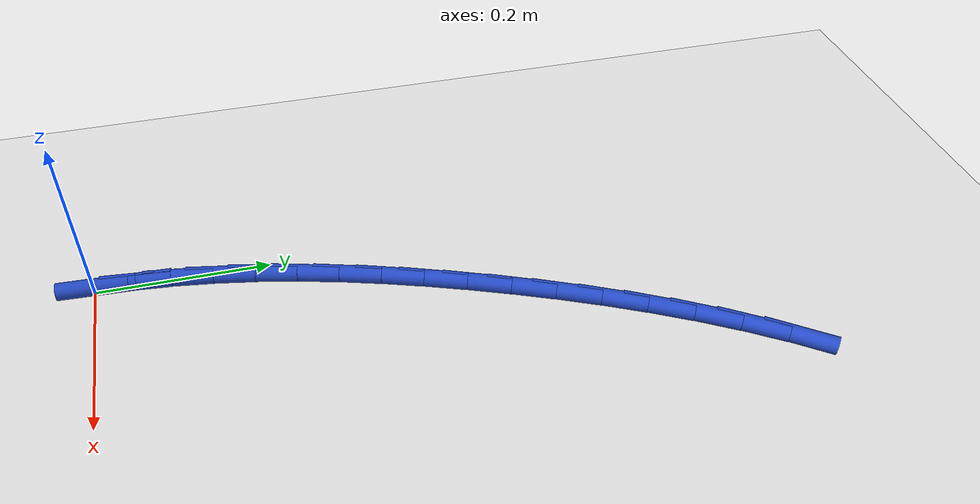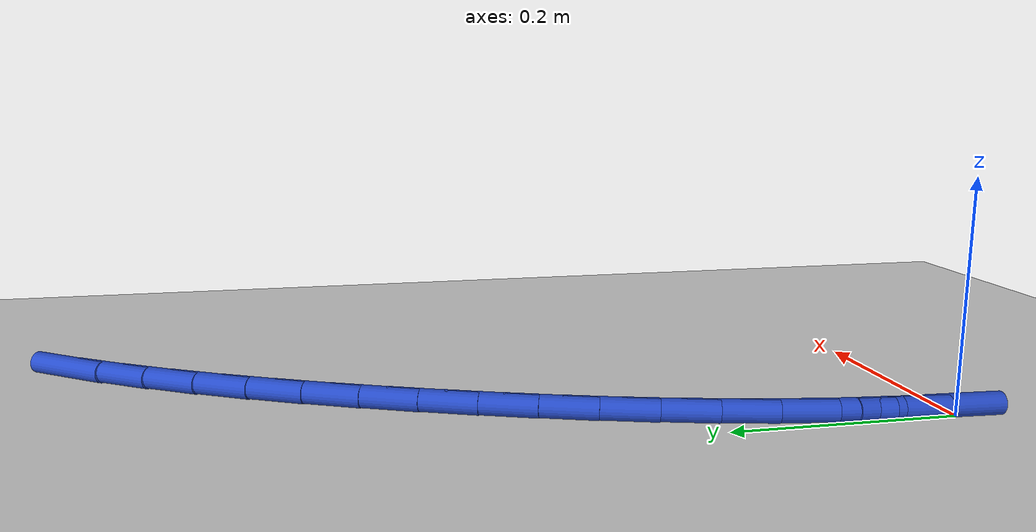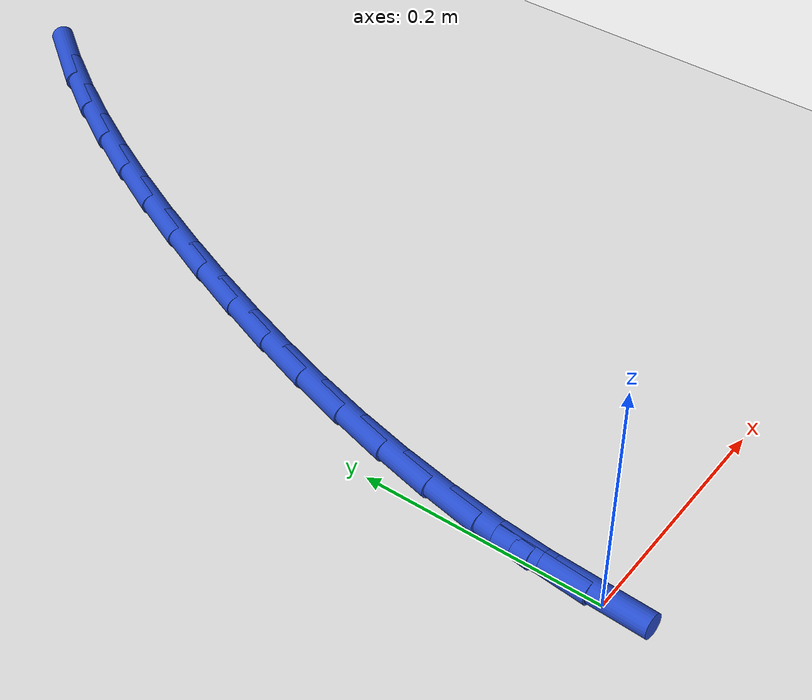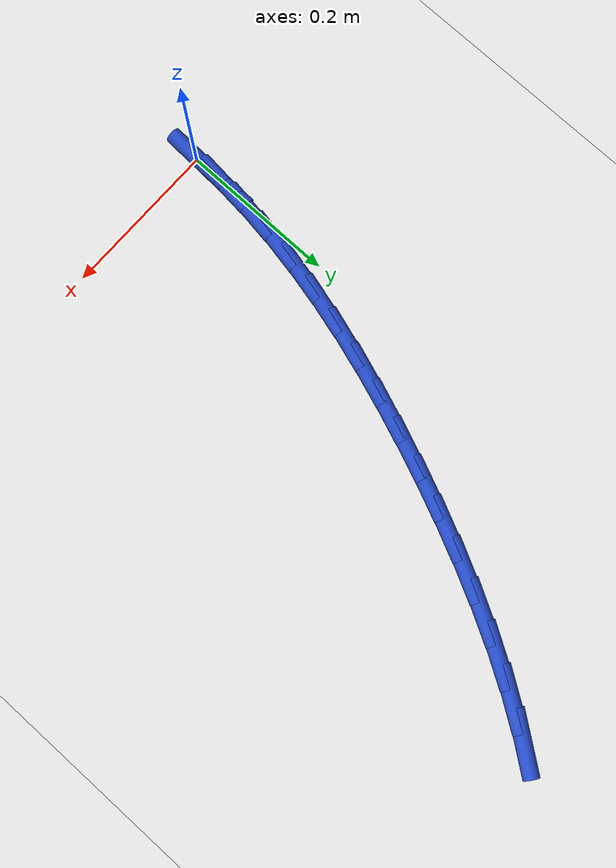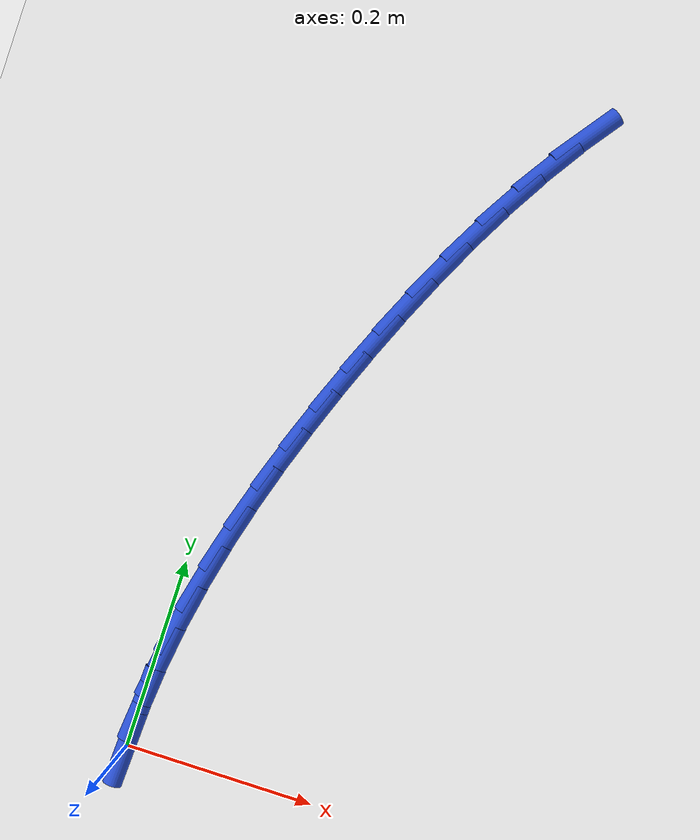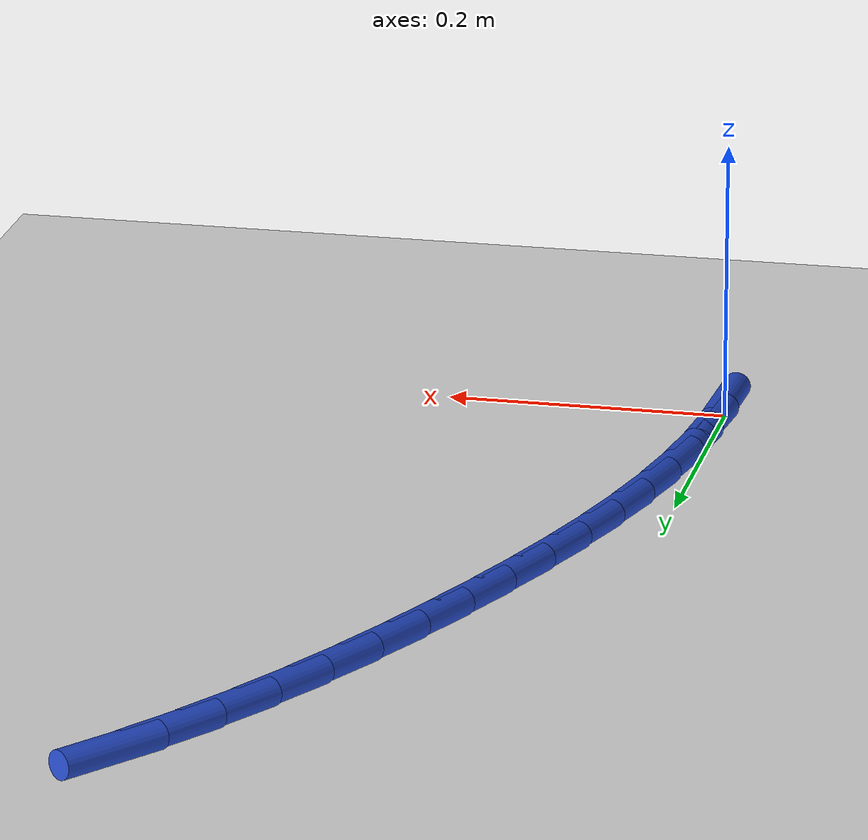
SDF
<sdf version="1.6">
 <world name="default">
  <model name="ground_plane">
   <static>1</static>
   <link name="link">
    <collision name="collision">
     <geometry><plane><normal>0 0 1</normal><size>100 100</size></plane></geometry>
     <surface><friction><ode><mu>100</mu><mu2>50</mu2></ode></friction></surface>
    </collision>
    <visual name="visual">
     <cast_shadows>0</cast_shadows>
     <geometry><plane><normal>0 0 1</normal><size>100 100</size></plane></geometry>
     <material>
      <script><uri>file://media/materials/scripts/gazebo.material</uri><name>Gazebo/WhiteGlow</name></script>
     </material>
    </visual>
   </link>
  </model>
  <model name="line">
   <link name="link_1">
    <pose>0.002061508336502274 0.047938373631018355 0.01 0 1.57 1.4752928590104364</pose>
    <collision name="collision">
     <geometry><cylinder><radius>0.01</radius><length>0.08</length></cylinder></geometry>
    </collision>
    <visual name="visual">
     <material>
      <script><name>Gazebo/Blue</name><uri>file://media/materials/scripts/gazebo.material</uri></script>
     </material>
     <geometry><cylinder><radius>0.01</radius><length>0.08</length></cylinder></geometry>
    </visual>
   </link>
   <link name="link_2">
    <pose>0.00662725512407017 0.09560006787530616 0.01 0 1.57 1.4260237001838905</pose>
    <collision name="collision">
     <geometry><cylinder><radius>0.01</radius><length>0.08</length></cylinder></geometry>
    </collision>
    <visual name="visual">
     <material>
      <script><name>Gazebo/Blue</name><uri>file://media/materials/scripts/gazebo.material</uri></script>
     </material>
     <geometry><cylinder><radius>0.01</radius><length>0.08</length></cylinder></geometry>
    </visual>
   </link>
   <link name="link_3">
    <pose>0.01354250712199076 0.1430321826391709 0.01 0 1.57 1.3803273264530966</pose>
    <collision name="collision">
     <geometry><cylinder><radius>0.01</radius><length>0.08</length></cylinder></geometry>
    </collision>
    <visual name="visual">
     <material>
      <script><name>Gazebo/Blue</name><uri>file://media/materials/scripts/gazebo.material</uri></script>
     </material>
     <geometry><cylinder><radius>0.01</radius><length>0.08</length></cylinder></geometry>
    </visual>
   </link>
   <link name="link_4">
    <pose>0.022652531089551117 0.19028181782891987 0.01 0 1.57 1.3384117648278857</pose>
    <collision name="collision">
     <geometry><cylinder><radius>0.01</radius><length>0.08</length></cylinder></geometry>
    </collision>
    <visual name="visual">
     <material>
      <script><name>Gazebo/Blue</name><uri>file://media/materials/scripts/gazebo.material</uri></script>
     </material>
     <geometry><cylinder><radius>0.01</radius><length>0.08</length></cylinder></geometry>
    </visual>
   </link>
   <link name="link_5">
    <pose>0.033802593786038344 0.23739607335086071 0.01 0 1.57 1.300390533284064</pose>
    <collision name="collision">
     <geometry><cylinder><radius>0.01</radius><length>0.08</length></cylinder></geometry>
    </collision>
    <visual name="visual">
     <material>
      <script><name>Gazebo/Blue</name><uri>file://media/materials/scripts/gazebo.material</uri></script>
     </material>
     <geometry><cylinder><radius>0.01</radius><length>0.08</length></cylinder></geometry>
    </visual>
   </link>
   <link name="link_6">
    <pose>0.04683796197073954 0.28442204911130087 0.01 0 1.57 1.2662991908527867</pose>
    <collision name="collision">
     <geometry><cylinder><radius>0.01</radius><length>0.08</length></cylinder></geometry>
    </collision>
    <visual name="visual">
     <material>
      <script><name>Gazebo/Blue</name><uri>file://media/materials/scripts/gazebo.material</uri></script>
     </material>
     <geometry><cylinder><radius>0.01</radius><length>0.08</length></cylinder></geometry>
    </visual>
   </link>
   <link name="link_7">
    <pose>0.06160390240294175 0.33140684501654777 0.01 0 1.57 1.2361129764337027</pose>
    <collision name="collision">
     <geometry><cylinder><radius>0.01</radius><length>0.08</length></cylinder></geometry>
    </collision>
    <visual name="visual">
     <material>
      <script><name>Gazebo/Blue</name><uri>file://media/materials/scripts/gazebo.material</uri></script>
     </material>
     <geometry><cylinder><radius>0.01</radius><length>0.08</length></cylinder></geometry>
    </visual>
   </link>
   <link name="link_8">
    <pose>0.07794568184193207 0.3783975609729087 0.01 0 1.57 1.2097635870300976</pose>
    <collision name="collision">
     <geometry><cylinder><radius>0.01</radius><length>0.08</length></cylinder></geometry>
    </collision>
    <visual name="visual">
     <material>
      <script><name>Gazebo/Blue</name><uri>file://media/materials/scripts/gazebo.material</uri></script>
     </material>
     <geometry><cylinder><radius>0.01</radius><length>0.08</length></cylinder></geometry>
    </visual>
   </link>
   <link name="link_9">
    <pose>0.0957085670469976 0.4254412968866915 0.01 0 1.57 1.1865406836885097</pose>
    <collision name="collision">
     <geometry><cylinder><radius>0.01</radius><length>0.08</length></cylinder></geometry>
    </collision>
    <visual name="visual">
     <material>
      <script><name>Gazebo/Blue</name><uri>file://media/materials/scripts/gazebo.material</uri></script>
     </material>
     <geometry><cylinder><radius>0.01</radius><length>0.08</length></cylinder></geometry>
    </visual>
   </link>
   <link name="link_10">
    <pose>0.1147587307369242 0.4725536873679474 0.01 0 1.57 1.1620558361260096</pose>
    <collision name="collision">
     <geometry><cylinder><radius>0.01</radius><length>0.08</length></cylinder></geometry>
    </collision>
    <visual name="visual">
     <material>
      <script><name>Gazebo/Blue</name><uri>file://media/materials/scripts/gazebo.material</uri></script>
     </material>
     <geometry><cylinder><radius>0.01</radius><length>0.08</length></cylinder></geometry>
    </visual>
   </link>
   <link name="link_11">
    <pose>0.1351069661754311 0.5195327004665647 0.01 0 1.57 1.1342719531180012</pose>
    <collision name="collision">
     <geometry><cylinder><radius>0.01</radius><length>0.08</length></cylinder></geometry>
    </collision>
    <visual name="visual">
     <material>
      <script><name>Gazebo/Blue</name><uri>file://media/materials/scripts/gazebo.material</uri></script>
     </material>
     <geometry><cylinder><radius>0.01</radius><length>0.08</length></cylinder></geometry>
    </visual>
   </link>
   <link name="link_12">
    <pose>0.15682520948886072 0.5660842788802112 0.01 0 1.57 1.1028720318219527</pose>
    <collision name="collision">
     <geometry><cylinder><radius>0.01</radius><length>0.08</length></cylinder></geometry>
    </collision>
    <visual name="visual">
     <material>
      <script><name>Gazebo/Blue</name><uri>file://media/materials/scripts/gazebo.material</uri></script>
     </material>
     <geometry><cylinder><radius>0.01</radius><length>0.08</length></cylinder></geometry>
    </visual>
   </link>
   <link name="link_13">
    <pose>0.1799856146416777 0.6119140374411416 0.01 0 1.57 1.0674861008657033</pose>
    <collision name="collision">
     <geometry><cylinder><radius>0.01</radius><length>0.08</length></cylinder></geometry>
    </collision>
    <visual name="visual">
     <material>
      <script><name>Gazebo/Blue</name><uri>file://media/materials/scripts/gazebo.material</uri></script>
     </material>
     <geometry><cylinder><radius>0.01</radius><length>0.08</length></cylinder></geometry>
    </visual>
   </link>
   <link name="link_14">
    <pose>0.20466033559834662 0.6567275909816106 0.01 0 1.57 1.027686762469743</pose>
    <collision name="collision">
     <geometry><cylinder><radius>0.01</radius><length>0.08</length></cylinder></geometry>
    </collision>
    <visual name="visual">
     <material>
      <script><name>Gazebo/Blue</name><uri>file://media/materials/scripts/gazebo.material</uri></script>
     </material>
     <geometry><cylinder><radius>0.01</radius><length>0.08</length></cylinder></geometry>
    </visual>
   </link>
   <link name="link_15">
    <pose>0.23092152632333215 0.7002305543338729 0.01 0 1.57 0.982994967646468</pose>
    <collision name="collision">
     <geometry><cylinder><radius>0.01</radius><length>0.08</length></cylinder></geometry>
    </collision>
    <visual name="visual">
     <material>
      <script><name>Gazebo/Blue</name><uri>file://media/materials/scripts/gazebo.material</uri></script>
     </material>
     <geometry><cylinder><radius>0.01</radius><length>0.08</length></cylinder></geometry>
    </visual>
   </link>
   <link name="link_16">
    <pose>0.25884134078109905 0.7421285423301837 0.01 0 1.57 0.9328928080031752</pose>
    <collision name="collision">
     <geometry><cylinder><radius>0.01</radius><length>0.08</length></cylinder></geometry>
    </collision>
    <visual name="visual">
     <material>
      <script><name>Gazebo/Blue</name><uri>file://media/materials/scripts/gazebo.material</uri></script>
     </material>
     <geometry><cylinder><radius>0.01</radius><length>0.08</length></cylinder></geometry>
    </visual>
   </link>
   <link name="link_140">
    <pose>-1.5612511283791264e-17 1.249000902703301e-16 0.01 0 1.57 1.5270880068929413</pose>
    <collision name="collision">
     <geometry><cylinder><radius>0.01</radius><length>0.08</length></cylinder></geometry>
    </collision>
    <visual name="visual">
     <material>
      <script><name>Gazebo/Blue</name><uri>file://media/materials/scripts/gazebo.material</uri></script>
     </material>
     <geometry><cylinder><radius>0.01</radius><length>0.08</length></cylinder></geometry>
    </visual>
   </link>
   <link name="link_141">
    <pose>0.002095098391439877 0.0479031007253662 0.01 0 1.57 1.5270880068929418</pose>
    <collision name="collision">
     <geometry><cylinder><radius>0.01</radius><length>0.08</length></cylinder></geometry>
    </collision>
    <visual name="visual">
     <material>
      <script><name>Gazebo/Blue</name><uri>file://media/materials/scripts/gazebo.material</uri></script>
     </material>
     <geometry><cylinder><radius>0.01</radius><length>0.08</length></cylinder></geometry>
    </visual>
   </link>
  </model>
 </world>
</sdf>
